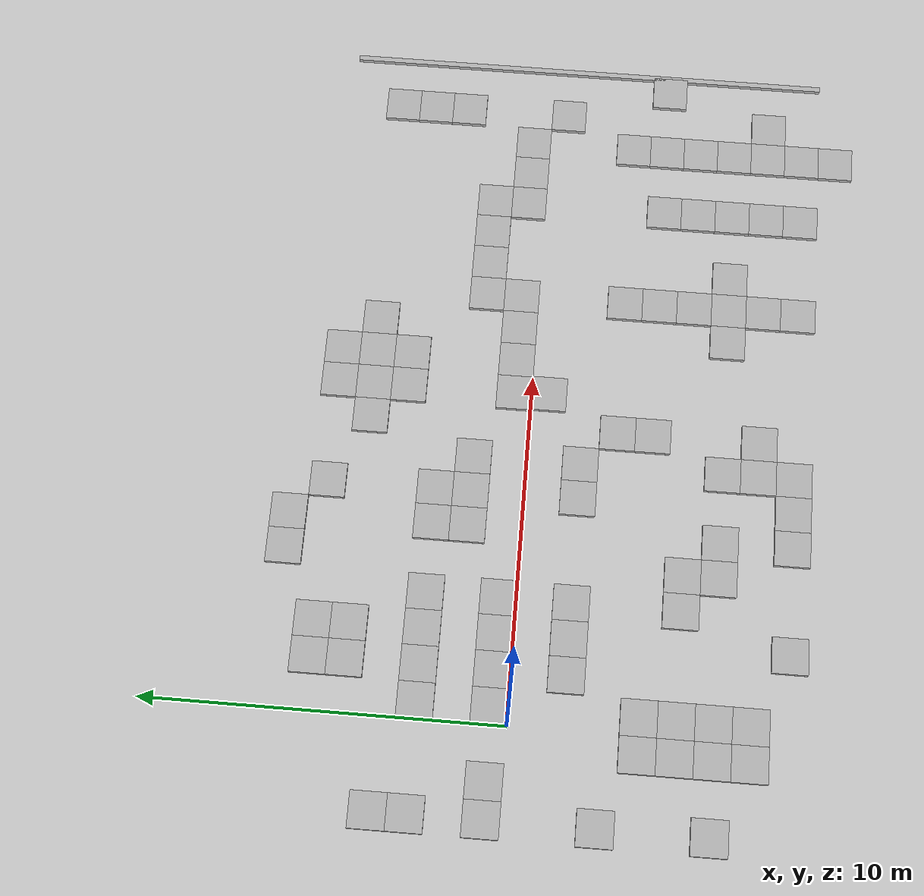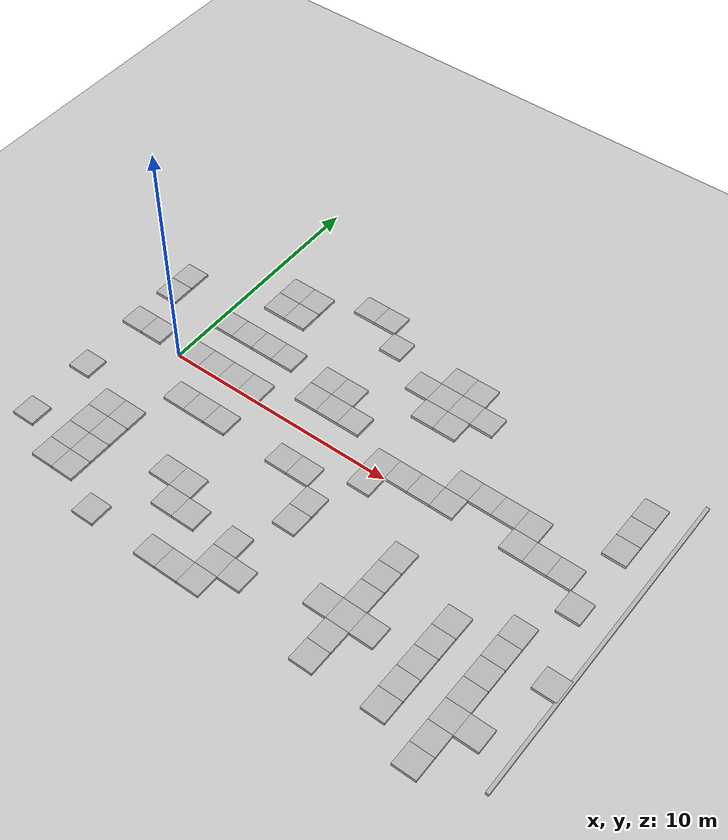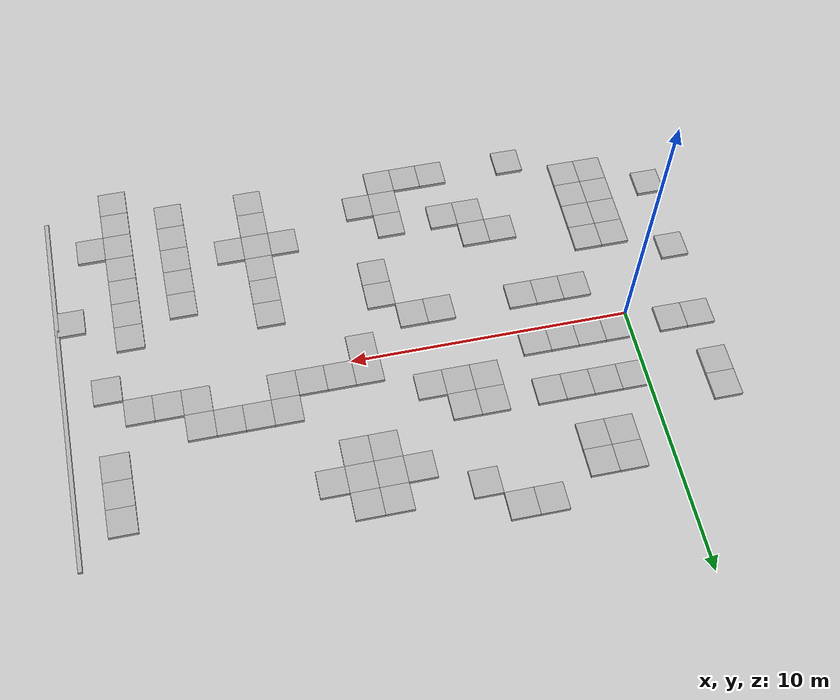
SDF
<sdf version="1.7">
 <world name="default">
  <model name="ground_plane">
   <static>1</static>
   <link name="link">
    <collision name="collision">
     <geometry><plane><normal>0 0 1</normal><size>100 100</size></plane></geometry>
     <surface>
      <contact><collide_bitmask>65535</collide_bitmask></contact>
      <friction><ode><mu>100</mu><mu2>50</mu2></ode></friction>
     </surface>
    </collision>
    <visual name="visual">
     <cast_shadows>0</cast_shadows>
     <geometry><plane><normal>0 0 1</normal><size>100 100</size></plane></geometry>
     <material>
      <script><uri>file://media/materials/scripts/gazebo.material</uri><name>Gazebo/Grey</name></script>
     </material>
    </visual>
   </link>
  </model>
  <model name="concrete_cube_1m_2">
   <static>1</static>
   <link name="link">
    <collision name="concrete_cube_1m">
     <pose>-0 0 0.3 0 -0 0</pose>
     <geometry><box><size>1 1 0.6</size></box></geometry>
    </collision>
    <visual name="concrete_cube_1m_visual">
     <geometry><mesh><uri>model://concrete_cube_1m/meshes/concrete_cube_1m.dae</uri></mesh></geometry>
    </visual>
   </link>
   <pose>-1.5 0.5 0 0 -0 0</pose>
  </model>
  <model name="concrete_cube_1m_4">
   <static>1</static>
   <link name="link">
    <collision name="concrete_cube_1m">
     <pose>-0 0 0.3 0 -0 0</pose>
     <geometry><box><size>1 1 0.6</size></box></geometry>
    </collision>
    <visual name="concrete_cube_1m_visual">
     <geometry><mesh><uri>model://concrete_cube_1m/meshes/concrete_cube_1m.dae</uri></mesh></geometry>
    </visual>
   </link>
   <pose>6.5 2.5 0 0 -0 0</pose>
  </model>
  <model name="concrete_cube_1m_5">
   <static>1</static>
   <link name="link">
    <collision name="concrete_cube_1m">
     <pose>-0 0 0.3 0 -0 0</pose>
     <geometry><box><size>1 1 0.6</size></box></geometry>
    </collision>
    <visual name="concrete_cube_1m_visual">
     <geometry><mesh><uri>model://concrete_cube_1m/meshes/concrete_cube_1m.dae</uri></mesh></geometry>
    </visual>
   </link>
   <pose>5.5 2.5 0 0 -0 0</pose>
  </model>
  <model name="concrete_cube_1m_6">
   <static>1</static>
   <link name="link">
    <collision name="concrete_cube_1m">
     <pose>-0 0 0.3 0 -0 0</pose>
     <geometry><box><size>1 1 0.6</size></box></geometry>
    </collision>
    <visual name="concrete_cube_1m_visual">
     <geometry><mesh><uri>model://concrete_cube_1m/meshes/concrete_cube_1m.dae</uri></mesh></geometry>
    </visual>
   </link>
   <pose>6.5 1.5 0 0 -0 0</pose>
  </model>
  <model name="concrete_cube_1m_7">
   <static>1</static>
   <link name="link">
    <collision name="concrete_cube_1m">
     <pose>-0 0 0.3 0 -0 0</pose>
     <geometry><box><size>1 1 0.6</size></box></geometry>
    </collision>
    <visual name="concrete_cube_1m_visual">
     <geometry><mesh><uri>model://concrete_cube_1m/meshes/concrete_cube_1m.dae</uri></mesh></geometry>
    </visual>
   </link>
   <pose>5.5 1.5 0 0 -0 0</pose>
  </model>
  <model name="concrete_cube_1m_8">
   <static>1</static>
   <link name="link">
    <collision name="concrete_cube_1m">
     <pose>-0 0 0.3 0 -0 0</pose>
     <geometry><box><size>1 1 0.6</size></box></geometry>
    </collision>
    <visual name="concrete_cube_1m_visual">
     <geometry><mesh><uri>model://concrete_cube_1m/meshes/concrete_cube_1m.dae</uri></mesh></geometry>
    </visual>
   </link>
   <pose>-0.5 -4.5 0 0 -0 0</pose>
  </model>
  <model name="concrete_cube_1m_9">
   <static>1</static>
   <link name="link">
    <collision name="concrete_cube_1m">
     <pose>-0 0 0.3 0 -0 0</pose>
     <geometry><box><size>1 1 0.6</size></box></geometry>
    </collision>
    <visual name="concrete_cube_1m_visual">
     <geometry><mesh><uri>model://concrete_cube_1m/meshes/concrete_cube_1m.dae</uri></mesh></geometry>
    </visual>
   </link>
   <pose>0.5 -4.5 0 0 -0 0</pose>
  </model>
  <model name="concrete_cube_1m_10">
   <static>1</static>
   <link name="link">
    <collision name="concrete_cube_1m">
     <pose>-0 0 0.3 0 -0 0</pose>
     <geometry><box><size>1 1 0.6</size></box></geometry>
    </collision>
    <visual name="concrete_cube_1m_visual">
     <geometry><mesh><uri>model://concrete_cube_1m/meshes/concrete_cube_1m.dae</uri></mesh></geometry>
    </visual>
   </link>
   <pose>4.5 -5.5 0 0 -0 0</pose>
  </model>
  <model name="concrete_cube_1m_11">
   <static>1</static>
   <link name="link">
    <collision name="concrete_cube_1m">
     <pose>-0 0 0.3 0 -0 0</pose>
     <geometry><box><size>1 1 0.6</size></box></geometry>
    </collision>
    <visual name="concrete_cube_1m_visual">
     <geometry><mesh><uri>model://concrete_cube_1m/meshes/concrete_cube_1m.dae</uri></mesh></geometry>
    </visual>
   </link>
   <pose>5.5 -5.5 0 0 -0 0</pose>
  </model>
  <model name="concrete_cube_1m_17">
   <static>1</static>
   <link name="link">
    <collision name="concrete_cube_1m">
     <pose>-0 0 0.3 0 -0 0</pose>
     <geometry><box><size>1 1 0.6</size></box></geometry>
    </collision>
    <visual name="concrete_cube_1m_visual">
     <geometry><mesh><uri>model://concrete_cube_1m/meshes/concrete_cube_1m.dae</uri></mesh></geometry>
    </visual>
   </link>
   <pose>2.5 5.5 0 0 -0 0</pose>
  </model>
  <model name="concrete_cube_1m_21">
   <static>1</static>
   <link name="link">
    <collision name="concrete_cube_1m">
     <pose>-0 0 0.3 0 -0 0</pose>
     <geometry><box><size>1 1 0.6</size></box></geometry>
    </collision>
    <visual name="concrete_cube_1m_visual">
     <geometry><mesh><uri>model://concrete_cube_1m/meshes/concrete_cube_1m.dae</uri></mesh></geometry>
    </visual>
   </link>
   <pose>6.5 5.5 0 0 -0 0</pose>
  </model>
  <model name="concrete_cube_1m_22">
   <static>1</static>
   <link name="link">
    <collision name="concrete_cube_1m">
     <pose>-0 0 0.3 0 -0 0</pose>
     <geometry><box><size>1 1 0.6</size></box></geometry>
    </collision>
    <visual name="concrete_cube_1m_visual">
     <geometry><mesh><uri>model://concrete_cube_1m/meshes/concrete_cube_1m.dae</uri></mesh></geometry>
    </visual>
   </link>
   <pose>5.5 6.5 0 0 -0 0</pose>
  </model>
  <model name="concrete_cube_1m_23">
   <static>1</static>
   <link name="link">
    <collision name="concrete_cube_1m">
     <pose>-0 0 0.3 0 -0 0</pose>
     <geometry><box><size>1 1 0.6</size></box></geometry>
    </collision>
    <visual name="concrete_cube_1m_visual">
     <geometry><mesh><uri>model://concrete_cube_1m/meshes/concrete_cube_1m.dae</uri></mesh></geometry>
    </visual>
   </link>
   <pose>4.5 6.5 0 0 -0 0</pose>
  </model>
  <model name="concrete_cube_1m_25">
   <static>1</static>
   <link name="link">
    <collision name="concrete_cube_1m">
     <pose>-0 0 0.3 0 -0 0</pose>
     <geometry><box><size>1 1 0.6</size></box></geometry>
    </collision>
    <visual name="concrete_cube_1m_visual">
     <geometry><mesh><uri>model://concrete_cube_1m/meshes/concrete_cube_1m.dae</uri></mesh></geometry>
    </visual>
   </link>
   <pose>3.5 2.5 0 0 -0 0</pose>
  </model>
  <model name="concrete_cube_1m_26">
   <static>1</static>
   <link name="link">
    <collision name="concrete_cube_1m">
     <pose>-0 0 0.3 0 -0 0</pose>
     <geometry><box><size>1 1 0.6</size></box></geometry>
    </collision>
    <visual name="concrete_cube_1m_visual">
     <geometry><mesh><uri>model://concrete_cube_1m/meshes/concrete_cube_1m.dae</uri></mesh></geometry>
    </visual>
   </link>
   <pose>2.5 2.5 0 0 -0 0</pose>
  </model>
  <model name="concrete_cube_1m_27">
   <static>1</static>
   <link name="link">
    <collision name="concrete_cube_1m">
     <pose>-0 0 0.3 0 -0 0</pose>
     <geometry><box><size>1 1 0.6</size></box></geometry>
    </collision>
    <visual name="concrete_cube_1m_visual">
     <geometry><mesh><uri>model://concrete_cube_1m/meshes/concrete_cube_1m.dae</uri></mesh></geometry>
    </visual>
   </link>
   <pose>1.5 2.5 0 0 -0 0</pose>
  </model>
  <model name="concrete_cube_1m_28">
   <static>1</static>
   <link name="link">
    <collision name="concrete_cube_1m">
     <pose>-0 0 0.3 0 -0 0</pose>
     <geometry><box><size>1 1 0.6</size></box></geometry>
    </collision>
    <visual name="concrete_cube_1m_visual">
     <geometry><mesh><uri>model://concrete_cube_1m/meshes/concrete_cube_1m.dae</uri></mesh></geometry>
    </visual>
   </link>
   <pose>0.5 2.5 0 0 -0 0</pose>
  </model>
  <model name="concrete_cube_1m_29">
   <static>1</static>
   <link name="link">
    <collision name="concrete_cube_1m">
     <pose>-0 0 0.3 0 -0 0</pose>
     <geometry><box><size>1 1 0.6</size></box></geometry>
    </collision>
    <visual name="concrete_cube_1m_visual">
     <geometry><mesh><uri>model://concrete_cube_1m/meshes/concrete_cube_1m.dae</uri></mesh></geometry>
    </visual>
   </link>
   <pose>1.5 4.5 0 0 -0 0</pose>
  </model>
  <model name="concrete_cube_1m_30">
   <static>1</static>
   <link name="link">
    <collision name="concrete_cube_1m">
     <pose>-0 0 0.3 0 -0 0</pose>
     <geometry><box><size>1 1 0.6</size></box></geometry>
    </collision>
    <visual name="concrete_cube_1m_visual">
     <geometry><mesh><uri>model://concrete_cube_1m/meshes/concrete_cube_1m.dae</uri></mesh></geometry>
    </visual>
   </link>
   <pose>8.5 4.5 0 0 -0 0</pose>
  </model>
  <model name="concrete_cube_1m_31">
   <static>1</static>
   <link name="link">
    <collision name="concrete_cube_1m">
     <pose>-0 0 0.3 0 -0 0</pose>
     <geometry><box><size>1 1 0.6</size></box></geometry>
    </collision>
    <visual name="concrete_cube_1m_visual">
     <geometry><mesh><uri>model://concrete_cube_1m/meshes/concrete_cube_1m.dae</uri></mesh></geometry>
    </visual>
   </link>
   <pose>9.5 4.5 0 0 -0 0</pose>
  </model>
  <model name="concrete_cube_1m_32">
   <static>1</static>
   <link name="link">
    <collision name="concrete_cube_1m">
     <pose>-0 0 0.3 0 -0 0</pose>
     <geometry><box><size>1 1 0.6</size></box></geometry>
    </collision>
    <visual name="concrete_cube_1m_visual">
     <geometry><mesh><uri>model://concrete_cube_1m/meshes/concrete_cube_1m.dae</uri></mesh></geometry>
    </visual>
   </link>
   <pose>9.5 3.5 0 0 -0 0</pose>
  </model>
  <model name="concrete_cube_1m_33">
   <static>1</static>
   <link name="link">
    <collision name="concrete_cube_1m">
     <pose>-0 0 0.3 0 -0 0</pose>
     <geometry><box><size>1 1 0.6</size></box></geometry>
    </collision>
    <visual name="concrete_cube_1m_visual">
     <geometry><mesh><uri>model://concrete_cube_1m/meshes/concrete_cube_1m.dae</uri></mesh></geometry>
    </visual>
   </link>
   <pose>9.5 5.5 0 0 -0 0</pose>
  </model>
  <model name="concrete_cube_1m_34">
   <static>1</static>
   <link name="link">
    <collision name="concrete_cube_1m">
     <pose>-0 0 0.3 0 -0 0</pose>
     <geometry><box><size>1 1 0.6</size></box></geometry>
    </collision>
    <visual name="concrete_cube_1m_visual">
     <geometry><mesh><uri>model://concrete_cube_1m/meshes/concrete_cube_1m.dae</uri></mesh></geometry>
    </visual>
   </link>
   <pose>7.5 1.5 0 0 -0 0</pose>
  </model>
  <model name="concrete_cube_1m_35">
   <static>1</static>
   <link name="link">
    <collision name="concrete_cube_1m">
     <pose>-0 0 0.3 0 -0 0</pose>
     <geometry><box><size>1 1 0.6</size></box></geometry>
    </collision>
    <visual name="concrete_cube_1m_visual">
     <geometry><mesh><uri>model://concrete_cube_1m/meshes/concrete_cube_1m.dae</uri></mesh></geometry>
    </visual>
   </link>
   <pose>9.5 0.5 0 0 -0 0</pose>
  </model>
  <model name="concrete_cube_1m_39">
   <static>1</static>
   <link name="link">
    <collision name="concrete_cube_1m">
     <pose>-0 0 0.3 0 -0 0</pose>
     <geometry><box><size>1 1 0.6</size></box></geometry>
    </collision>
    <visual name="concrete_cube_1m_visual">
     <geometry><mesh><uri>model://concrete_cube_1m/meshes/concrete_cube_1m.dae</uri></mesh></geometry>
    </visual>
   </link>
   <pose>2.5 4.5 0 0 -0 0</pose>
  </model>
  <model name="concrete_cube_1m_40">
   <static>1</static>
   <link name="link">
    <collision name="concrete_cube_1m">
     <pose>-0 0 0.3 0 -0 0</pose>
     <geometry><box><size>1 1 0.6</size></box></geometry>
    </collision>
    <visual name="concrete_cube_1m_visual">
     <geometry><mesh><uri>model://concrete_cube_1m/meshes/concrete_cube_1m.dae</uri></mesh></geometry>
    </visual>
   </link>
   <pose>1.5 5.5 0 0 -0 0</pose>
  </model>
  <model name="concrete_cube_1m_41">
   <static>1</static>
   <link name="link">
    <collision name="concrete_cube_1m">
     <pose>-0 0 0.3 0 -0 0</pose>
     <geometry><box><size>1 1 0.6</size></box></geometry>
    </collision>
    <visual name="concrete_cube_1m_visual">
     <geometry><mesh><uri>model://concrete_cube_1m/meshes/concrete_cube_1m.dae</uri></mesh></geometry>
    </visual>
   </link>
   <pose>3.5 0.5 0 0 -0 0</pose>
  </model>
  <model name="concrete_cube_1m_42">
   <static>1</static>
   <link name="link">
    <collision name="concrete_cube_1m">
     <pose>-0 0 0.3 0 -0 0</pose>
     <geometry><box><size>1 1 0.6</size></box></geometry>
    </collision>
    <visual name="concrete_cube_1m_visual">
     <geometry><mesh><uri>model://concrete_cube_1m/meshes/concrete_cube_1m.dae</uri></mesh></geometry>
    </visual>
   </link>
   <pose>2.5 0.5 0 0 -0 0</pose>
  </model>
  <model name="concrete_cube_1m_45">
   <static>1</static>
   <link name="link">
    <collision name="concrete_cube_1m">
     <pose>-0 0 0.3 0 -0 0</pose>
     <geometry><box><size>1 1 0.6</size></box></geometry>
    </collision>
    <visual name="concrete_cube_1m_visual">
     <geometry><mesh><uri>model://concrete_cube_1m/meshes/concrete_cube_1m.dae</uri></mesh></geometry>
    </visual>
   </link>
   <pose>-2.5 0.5 0 0 -0 0</pose>
  </model>
  <model name="concrete_cube_1m_63">
   <static>1</static>
   <link name="link">
    <collision name="concrete_cube_1m">
     <pose>-0 0 0.3 0 -0 0</pose>
     <geometry><box><size>1 1 0.6</size></box></geometry>
    </collision>
    <visual name="concrete_cube_1m_visual">
     <geometry><mesh><uri>model://concrete_cube_1m/meshes/concrete_cube_1m.dae</uri></mesh></geometry>
    </visual>
   </link>
   <pose>-2.5 3.5 0 0 -0 0</pose>
  </model>
  <model name="concrete_cube_1m_64">
   <static>1</static>
   <link name="link">
    <collision name="concrete_cube_1m">
     <pose>-0 0 0.3 0 -0 0</pose>
     <geometry><box><size>1 1 0.6</size></box></geometry>
    </collision>
    <visual name="concrete_cube_1m_visual">
     <geometry><mesh><uri>model://concrete_cube_1m/meshes/concrete_cube_1m.dae</uri></mesh></geometry>
    </visual>
   </link>
   <pose>7.5 -7.5 0 0 -0 0</pose>
  </model>
  <model name="concrete_cube_1m_65">
   <static>1</static>
   <link name="link">
    <collision name="concrete_cube_1m">
     <pose>-0 0 0.3 0 -0 0</pose>
     <geometry><box><size>1 1 0.6</size></box></geometry>
    </collision>
    <visual name="concrete_cube_1m_visual">
     <geometry><mesh><uri>model://concrete_cube_1m/meshes/concrete_cube_1m.dae</uri></mesh></geometry>
    </visual>
   </link>
   <pose>7.5 -6.5 0 0 -0 0</pose>
  </model>
  <model name="concrete_cube_1m_66">
   <static>1</static>
   <link name="link">
    <collision name="concrete_cube_1m">
     <pose>-0 0 0.3 0 -0 0</pose>
     <geometry><box><size>1 1 0.6</size></box></geometry>
    </collision>
    <visual name="concrete_cube_1m_visual">
     <geometry><mesh><uri>model://concrete_cube_1m/meshes/concrete_cube_1m.dae</uri></mesh></geometry>
    </visual>
   </link>
   <pose>7.5 -5.5 0 0 -0 0</pose>
  </model>
  <model name="concrete_cube_1m_67">
   <static>1</static>
   <link name="link">
    <collision name="concrete_cube_1m">
     <pose>-0 0 0.3 0 -0 0</pose>
     <geometry><box><size>1 1 0.6</size></box></geometry>
    </collision>
    <visual name="concrete_cube_1m_visual">
     <geometry><mesh><uri>model://concrete_cube_1m/meshes/concrete_cube_1m.dae</uri></mesh></geometry>
    </visual>
   </link>
   <pose>6.5 -7.5 0 0 -0 0</pose>
  </model>
  <model name="concrete_cube_1m_68">
   <static>1</static>
   <link name="link">
    <collision name="concrete_cube_1m">
     <pose>-0 0 0.3 0 -0 0</pose>
     <geometry><box><size>1 1 0.6</size></box></geometry>
    </collision>
    <visual name="concrete_cube_1m_visual">
     <geometry><mesh><uri>model://concrete_cube_1m/meshes/concrete_cube_1m.dae</uri></mesh></geometry>
    </visual>
   </link>
   <pose>5.5 -7.5 0 0 -0 0</pose>
  </model>
  <model name="concrete_cube_1m_69">
   <static>1</static>
   <link name="link">
    <collision name="concrete_cube_1m">
     <pose>-0 0 0.3 0 -0 0</pose>
     <geometry><box><size>1 1 0.6</size></box></geometry>
    </collision>
    <visual name="concrete_cube_1m_visual">
     <geometry><mesh><uri>model://concrete_cube_1m/meshes/concrete_cube_1m.dae</uri></mesh></geometry>
    </visual>
   </link>
   <pose>8.5 -2.5 0 0 -0 0</pose>
  </model>
  <model name="concrete_cube_1m_70">
   <static>1</static>
   <link name="link">
    <collision name="concrete_cube_1m">
     <pose>-0 0 0.3 0 -0 0</pose>
     <geometry><box><size>1 1 0.6</size></box></geometry>
    </collision>
    <visual name="concrete_cube_1m_visual">
     <geometry><mesh><uri>model://concrete_cube_1m/meshes/concrete_cube_1m.dae</uri></mesh></geometry>
    </visual>
   </link>
   <pose>9.52896 -0.491132 0 0 -0 0</pose>
  </model>
  <model name="concrete_cube_1m_71">
   <static>1</static>
   <link name="link">
    <collision name="concrete_cube_1m">
     <pose>-0 0 0.3 0 -0 0</pose>
     <geometry><box><size>1 1 0.6</size></box></geometry>
    </collision>
    <visual name="concrete_cube_1m_visual">
     <geometry><mesh><uri>model://concrete_cube_1m/meshes/concrete_cube_1m.dae</uri></mesh></geometry>
    </visual>
   </link>
   <pose>7.5 -1.5 0 0 -0 0</pose>
  </model>
  <model name="concrete_cube_1m_72">
   <static>1</static>
   <link name="link">
    <collision name="concrete_cube_1m">
     <pose>-0 0 0.3 0 -0 0</pose>
     <geometry><box><size>1 1 0.6</size></box></geometry>
    </collision>
    <visual name="concrete_cube_1m_visual">
     <geometry><mesh><uri>model://concrete_cube_1m/meshes/concrete_cube_1m.dae</uri></mesh></geometry>
    </visual>
   </link>
   <pose>8.5 -3.5 0 0 -0 0</pose>
  </model>
  <model name="concrete_cube_1m_73">
   <static>1</static>
   <link name="link">
    <collision name="concrete_cube_1m">
     <pose>-0 0 0.3 0 -0 0</pose>
     <geometry><box><size>1 1 0.6</size></box></geometry>
    </collision>
    <visual name="concrete_cube_1m_visual">
     <geometry><mesh><uri>model://concrete_cube_1m/meshes/concrete_cube_1m.dae</uri></mesh></geometry>
    </visual>
   </link>
   <pose>6.5 -1.5 0 0 -0 0</pose>
  </model>
  <model name="concrete_cube_1m_74">
   <static>1</static>
   <link name="link">
    <collision name="concrete_cube_1m">
     <pose>-0 0 0.3 0 -0 0</pose>
     <geometry><box><size>1 1 0.6</size></box></geometry>
    </collision>
    <visual name="concrete_cube_1m_visual">
     <geometry><mesh><uri>model://concrete_cube_1m/meshes/concrete_cube_1m.dae</uri></mesh></geometry>
    </visual>
   </link>
   <pose>4.5 -4.5 0 0 -0 0</pose>
  </model>
  <model name="concrete_cube_1m_75">
   <static>1</static>
   <link name="link">
    <collision name="concrete_cube_1m">
     <pose>-0 0 0.3 0 -0 0</pose>
     <geometry><box><size>1 1 0.6</size></box></geometry>
    </collision>
    <visual name="concrete_cube_1m_visual">
     <geometry><mesh><uri>model://concrete_cube_1m/meshes/concrete_cube_1m.dae</uri></mesh></geometry>
    </visual>
   </link>
   <pose>3.5 -4.5 0 0 -0 0</pose>
  </model>
  <model name="concrete_cube_1m_76">
   <static>1</static>
   <link name="link">
    <collision name="concrete_cube_1m">
     <pose>-0 0 0.3 0 -0 0</pose>
     <geometry><box><size>1 1 0.6</size></box></geometry>
    </collision>
    <visual name="concrete_cube_1m_visual">
     <geometry><mesh><uri>model://concrete_cube_1m/meshes/concrete_cube_1m.dae</uri></mesh></geometry>
    </visual>
   </link>
   <pose>0.5 -3.5 0 0 -0 0</pose>
  </model>
  <model name="concrete_cube_1m_77">
   <static>1</static>
   <link name="link">
    <collision name="concrete_cube_1m">
     <pose>-0 0 0.3 0 -0 0</pose>
     <geometry><box><size>1 1 0.6</size></box></geometry>
    </collision>
    <visual name="concrete_cube_1m_visual">
     <geometry><mesh><uri>model://concrete_cube_1m/meshes/concrete_cube_1m.dae</uri></mesh></geometry>
    </visual>
   </link>
   <pose>-0.5 -3.5 0 0 -0 0</pose>
  </model>
  <model name="concrete_cube_1m_78">
   <static>1</static>
   <link name="link">
    <collision name="concrete_cube_1m">
     <pose>-0 0 0.3 0 -0 0</pose>
     <geometry><box><size>1 1 0.6</size></box></geometry>
    </collision>
    <visual name="concrete_cube_1m_visual">
     <geometry><mesh><uri>model://concrete_cube_1m/meshes/concrete_cube_1m.dae</uri></mesh></geometry>
    </visual>
   </link>
   <pose>0.5 -6.5 0 0 -0 0</pose>
  </model>
  <model name="concrete_cube_1m_79">
   <static>1</static>
   <link name="link">
    <collision name="concrete_cube_1m">
     <pose>-0 0 0.3 0 -0 0</pose>
     <geometry><box><size>1 1 0.6</size></box></geometry>
    </collision>
    <visual name="concrete_cube_1m_visual">
     <geometry><mesh><uri>model://concrete_cube_1m/meshes/concrete_cube_1m.dae</uri></mesh></geometry>
    </visual>
   </link>
   <pose>0.5 -5.5 0 0 -0 0</pose>
  </model>
  <model name="concrete_cube_1m_80">
   <static>1</static>
   <link name="link">
    <collision name="concrete_cube_1m">
     <pose>-0 0 0.3 0 -0 0</pose>
     <geometry><box><size>1 1 0.6</size></box></geometry>
    </collision>
    <visual name="concrete_cube_1m_visual">
     <geometry><mesh><uri>model://concrete_cube_1m/meshes/concrete_cube_1m.dae</uri></mesh></geometry>
    </visual>
   </link>
   <pose>-0.5 -6.5 0 0 -0 0</pose>
  </model>
  <model name="concrete_cube_1m_81">
   <static>1</static>
   <link name="link">
    <collision name="concrete_cube_1m">
     <pose>-0 0 0.3 0 -0 0</pose>
     <geometry><box><size>1 1 0.6</size></box></geometry>
    </collision>
    <visual name="concrete_cube_1m_visual">
     <geometry><mesh><uri>model://concrete_cube_1m/meshes/concrete_cube_1m.dae</uri></mesh></geometry>
    </visual>
   </link>
   <pose>-0.5 -5.5 0 0 -0 0</pose>
  </model>
  <model name="concrete_cube_1m_84">
   <static>1</static>
   <link name="link">
    <collision name="concrete_cube_1m">
     <pose>-0 0 0.3 0 -0 0</pose>
     <geometry><box><size>1 1 0.6</size></box></geometry>
    </collision>
    <visual name="concrete_cube_1m_visual">
     <geometry><mesh><uri>model://concrete_cube_1m/meshes/concrete_cube_1m.dae</uri></mesh></geometry>
    </visual>
   </link>
   <pose>3.5 -1.5 0 0 -0 0</pose>
  </model>
  <model name="concrete_cube_1m_85">
   <static>1</static>
   <link name="link">
    <collision name="concrete_cube_1m">
     <pose>-0 0 0.3 0 -0 0</pose>
     <geometry><box><size>1 1 0.6</size></box></geometry>
    </collision>
    <visual name="concrete_cube_1m_visual">
     <geometry><mesh><uri>model://concrete_cube_1m/meshes/concrete_cube_1m.dae</uri></mesh></geometry>
    </visual>
   </link>
   <pose>2.5 -1.5 0 0 -0 0</pose>
  </model>
  <model name="concrete_cube_1m_86">
   <static>1</static>
   <link name="link">
    <collision name="concrete_cube_1m">
     <pose>-0 0 0.3 0 -0 0</pose>
     <geometry><box><size>1 1 0.6</size></box></geometry>
    </collision>
    <visual name="concrete_cube_1m_visual">
     <geometry><mesh><uri>model://concrete_cube_1m/meshes/concrete_cube_1m.dae</uri></mesh></geometry>
    </visual>
   </link>
   <pose>1.5 -1.5 0 0 -0 0</pose>
  </model>
  <model name="concrete_cube_1m_87">
   <static>1</static>
   <link name="link">
    <collision name="concrete_cube_1m">
     <pose>-0 0 0.3 0 -0 0</pose>
     <geometry><box><size>1 1 0.6</size></box></geometry>
    </collision>
    <visual name="concrete_cube_1m_visual">
     <geometry><mesh><uri>model://concrete_cube_1m/meshes/concrete_cube_1m.dae</uri></mesh></geometry>
    </visual>
   </link>
   <pose>2.5 -7.5 0 0 -0 0</pose>
  </model>
  <model name="concrete_cube_1m_99">
   <static>1</static>
   <link name="link">
    <collision name="concrete_cube_1m">
     <pose>-0 0 0.3 0 -0 0</pose>
     <geometry><box><size>1 1 0.6</size></box></geometry>
    </collision>
    <visual name="concrete_cube_1m_visual">
     <geometry><mesh><uri>model://concrete_cube_1m/meshes/concrete_cube_1m.dae</uri></mesh></geometry>
    </visual>
   </link>
   <pose>-2.5 -2.5 0 0 -0 0</pose>
  </model>
  <model name="concrete_cube_1m_103">
   <static>1</static>
   <link name="link">
    <collision name="concrete_cube_1m">
     <pose>-0 0 0.3 0 -0 0</pose>
     <geometry><box><size>1 1 0.6</size></box></geometry>
    </collision>
    <visual name="concrete_cube_1m_visual">
     <geometry><mesh><uri>model://concrete_cube_1m/meshes/concrete_cube_1m.dae</uri></mesh></geometry>
    </visual>
   </link>
   <pose>-2.5 -5.5 0 0 -0 0</pose>
  </model>
  <model name="concrete_cube_1m_105">
   <static>1</static>
   <link name="link">
    <collision name="concrete_cube_1m">
     <pose>-0 0 0.3 0 -0 0</pose>
     <geometry><box><size>1 1 0.6</size></box></geometry>
    </collision>
    <visual name="concrete_cube_1m_visual">
     <geometry><mesh><uri>model://concrete_cube_1m/meshes/concrete_cube_1m.dae</uri></mesh></geometry>
    </visual>
   </link>
   <pose>8.5 -6.5 0 0 -0 0</pose>
  </model>
  <model name="concrete_cube_1m_115">
   <static>1</static>
   <link name="link">
    <collision name="concrete_cube_1m">
     <pose>-0 0 0.3 0 -0 0</pose>
     <geometry><box><size>1 1 0.6</size></box></geometry>
    </collision>
    <visual name="concrete_cube_1m_visual">
     <geometry><mesh><uri>model://concrete_cube_1m/meshes/concrete_cube_1m.dae</uri></mesh></geometry>
    </visual>
   </link>
   <pose>10.5 0.5 0 0 -0 0</pose>
  </model>
  <model name="concrete_cube_1m_116">
   <static>1</static>
   <link name="link">
    <collision name="concrete_cube_1m">
     <pose>-0 0 0.3 0 -0 0</pose>
     <geometry><box><size>1 1 0.6</size></box></geometry>
    </collision>
    <visual name="concrete_cube_1m_visual">
     <geometry><mesh><uri>model://concrete_cube_1m/meshes/concrete_cube_1m.dae</uri></mesh></geometry>
    </visual>
   </link>
   <pose>11.5 0.5 0 0 -0 0</pose>
  </model>
  <model name="concrete_cube_1m_117">
   <static>1</static>
   <link name="link">
    <collision name="concrete_cube_1m">
     <pose>-0 0 0.3 0 -0 0</pose>
     <geometry><box><size>1 1 0.6</size></box></geometry>
    </collision>
    <visual name="concrete_cube_1m_visual">
     <geometry><mesh><uri>model://concrete_cube_1m/meshes/concrete_cube_1m.dae</uri></mesh></geometry>
    </visual>
   </link>
   <pose>12.5 0.5 0 0 -0 0</pose>
  </model>
  <model name="concrete_cube_1m_118">
   <static>1</static>
   <link name="link">
    <collision name="concrete_cube_1m">
     <pose>-0 0 0.3 0 -0 0</pose>
     <geometry><box><size>1 1 0.6</size></box></geometry>
    </collision>
    <visual name="concrete_cube_1m_visual">
     <geometry><mesh><uri>model://concrete_cube_1m/meshes/concrete_cube_1m.dae</uri></mesh></geometry>
    </visual>
   </link>
   <pose>12.5 1.5 0 0 -0 0</pose>
  </model>
  <model name="concrete_cube_1m_119">
   <static>1</static>
   <link name="link">
    <collision name="concrete_cube_1m">
     <pose>-0 0 0.3 0 -0 0</pose>
     <geometry><box><size>1 1 0.6</size></box></geometry>
    </collision>
    <visual name="concrete_cube_1m_visual">
     <geometry><mesh><uri>model://concrete_cube_1m/meshes/concrete_cube_1m.dae</uri></mesh></geometry>
    </visual>
   </link>
   <pose>10.5 3.5 0 0 -0 0</pose>
  </model>
  <model name="concrete_cube_1m_120">
   <static>1</static>
   <link name="link">
    <collision name="concrete_cube_1m">
     <pose>-0 0 0.3 0 -0 0</pose>
     <geometry><box><size>1 1 0.6</size></box></geometry>
    </collision>
    <visual name="concrete_cube_1m_visual">
     <geometry><mesh><uri>model://concrete_cube_1m/meshes/concrete_cube_1m.dae</uri></mesh></geometry>
    </visual>
   </link>
   <pose>10.5 4.5 0 0 -0 0</pose>
  </model>
  <model name="concrete_cube_1m_121">
   <static>1</static>
   <link name="link">
    <collision name="concrete_cube_1m">
     <pose>-0 0 0.3 0 -0 0</pose>
     <geometry><box><size>1 1 0.6</size></box></geometry>
    </collision>
    <visual name="concrete_cube_1m_visual">
     <geometry><mesh><uri>model://concrete_cube_1m/meshes/concrete_cube_1m.dae</uri></mesh></geometry>
    </visual>
   </link>
   <pose>10.5 5.5 0 0 -0 0</pose>
  </model>
  <model name="concrete_cube_1m_122">
   <static>1</static>
   <link name="link">
    <collision name="concrete_cube_1m">
     <pose>-0 0 0.3 0 -0 0</pose>
     <geometry><box><size>1 1 0.6</size></box></geometry>
    </collision>
    <visual name="concrete_cube_1m_visual">
     <geometry><mesh><uri>model://concrete_cube_1m/meshes/concrete_cube_1m.dae</uri></mesh></geometry>
    </visual>
   </link>
   <pose>11.5 4.5 0 0 -0 0</pose>
  </model>
  <model name="concrete_cube_1m_145">
   <static>1</static>
   <link name="link">
    <collision name="concrete_cube_1m">
     <pose>-0 0 0.3 0 -0 0</pose>
     <geometry><box><size>1 1 0.6</size></box></geometry>
    </collision>
    <visual name="concrete_cube_1m_visual">
     <geometry><mesh><uri>model://concrete_cube_1m/meshes/concrete_cube_1m.dae</uri></mesh></geometry>
    </visual>
   </link>
   <pose>1.5 0.5 0 0 -0 0</pose>
  </model>
  <model name="concrete_cube_1m_146">
   <static>1</static>
   <link name="link">
    <collision name="concrete_cube_1m">
     <pose>-0 0 0.3 0 -0 0</pose>
     <geometry><box><size>1 1 0.6</size></box></geometry>
    </collision>
    <visual name="concrete_cube_1m_visual">
     <geometry><mesh><uri>model://concrete_cube_1m/meshes/concrete_cube_1m.dae</uri></mesh></geometry>
    </visual>
   </link>
   <pose>0.5 0.5 0 0 -0 0</pose>
  </model>
  <model name="concrete_cube_1m_180">
   <static>1</static>
   <link name="link">
    <collision name="concrete_cube_1m">
     <pose>-0 0 0.3 0 -0 0</pose>
     <geometry><box><size>1 1 0.6</size></box></geometry>
    </collision>
    <visual name="concrete_cube_1m_visual">
     <geometry><mesh><uri>model://concrete_cube_1m/meshes/concrete_cube_1m.dae</uri></mesh></geometry>
    </visual>
   </link>
   <pose>-2.5 2.5 0 0 -0 0</pose>
  </model>
  <model name="concrete_cube_1m_231">
   <static>1</static>
   <link name="link">
    <collision name="concrete_cube_1m">
     <pose>-0 0 0.3 0 -0 0</pose>
     <geometry><box><size>1 1 0.6</size></box></geometry>
    </collision>
    <visual name="concrete_cube_1m_visual">
     <geometry><mesh><uri>model://concrete_cube_1m/meshes/concrete_cube_1m.dae</uri></mesh></geometry>
    </visual>
   </link>
   <pose>12.5 -7.5 0 0 -0 0</pose>
  </model>
  <model name="concrete_cube_1m_232">
   <static>1</static>
   <link name="link">
    <collision name="concrete_cube_1m">
     <pose>-0 0 0.3 0 -0 0</pose>
     <geometry><box><size>1 1 0.6</size></box></geometry>
    </collision>
    <visual name="concrete_cube_1m_visual">
     <geometry><mesh><uri>model://concrete_cube_1m/meshes/concrete_cube_1m.dae</uri></mesh></geometry>
    </visual>
   </link>
   <pose>12.5 -6.5 0 0 -0 0</pose>
  </model>
  <model name="concrete_cube_1m_233">
   <static>1</static>
   <link name="link">
    <collision name="concrete_cube_1m">
     <pose>-0 0 0.3 0 -0 0</pose>
     <geometry><box><size>1 1 0.6</size></box></geometry>
    </collision>
    <visual name="concrete_cube_1m_visual">
     <geometry><mesh><uri>model://concrete_cube_1m/meshes/concrete_cube_1m.dae</uri></mesh></geometry>
    </visual>
   </link>
   <pose>12.5 -5.5 0 0 -0 0</pose>
  </model>
  <model name="concrete_cube_1m_234">
   <static>1</static>
   <link name="link">
    <collision name="concrete_cube_1m">
     <pose>-0 0 0.3 0 -0 0</pose>
     <geometry><box><size>1 1 0.6</size></box></geometry>
    </collision>
    <visual name="concrete_cube_1m_visual">
     <geometry><mesh><uri>model://concrete_cube_1m/meshes/concrete_cube_1m.dae</uri></mesh></geometry>
    </visual>
   </link>
   <pose>12.5 -4.5 0 0 -0 0</pose>
  </model>
  <model name="concrete_cube_1m_235">
   <static>1</static>
   <link name="link">
    <collision name="concrete_cube_1m">
     <pose>-0 0 0.3 0 -0 0</pose>
     <geometry><box><size>1 1 0.6</size></box></geometry>
    </collision>
    <visual name="concrete_cube_1m_visual">
     <geometry><mesh><uri>model://concrete_cube_1m/meshes/concrete_cube_1m.dae</uri></mesh></geometry>
    </visual>
   </link>
   <pose>12.5 -3.5 0 0 -0 0</pose>
  </model>
  <model name="concrete_cube_1m_236">
   <static>1</static>
   <link name="link">
    <collision name="concrete_cube_1m">
     <pose>-0 0 0.3 0 -0 0</pose>
     <geometry><box><size>1 1 0.6</size></box></geometry>
    </collision>
    <visual name="concrete_cube_1m_visual">
     <geometry><mesh><uri>model://concrete_cube_1m/meshes/concrete_cube_1m.dae</uri></mesh></geometry>
    </visual>
   </link>
   <pose>12.5 -2.5 0 0 -0 0</pose>
  </model>
  <model name="concrete_cube_1m_238">
   <static>1</static>
   <link name="link">
    <collision name="concrete_cube_1m">
     <pose>-0 0 0.3 0 -0 0</pose>
     <geometry><box><size>1 1 0.6</size></box></geometry>
    </collision>
    <visual name="concrete_cube_1m_visual">
     <geometry><mesh><uri>model://concrete_cube_1m/meshes/concrete_cube_1m.dae</uri></mesh></geometry>
    </visual>
   </link>
   <pose>11.5 -5.5 0 0 -0 0</pose>
  </model>
  <model name="concrete_cube_1m_240">
   <static>1</static>
   <link name="link">
    <collision name="concrete_cube_1m">
     <pose>-0 0 0.3 0 -0 0</pose>
     <geometry><box><size>1 1 0.6</size></box></geometry>
    </collision>
    <visual name="concrete_cube_1m_visual">
     <geometry><mesh><uri>model://concrete_cube_1m/meshes/concrete_cube_1m.dae</uri></mesh></geometry>
    </visual>
   </link>
   <pose>13.5 -5.5 0 0 -0 0</pose>
  </model>
  <model name="concrete_barrier_14m_7">
   <static>1</static>
   <link name="link">
    <collision name="concrete_barrier_14m_01">
     <pose>-0 0 0.3 0 -0 0</pose>
     <geometry><box><size>14 0.15 0.6</size></box></geometry>
    </collision>
    <visual name="concrete_barrier_14m_visual">
     <geometry><mesh><uri>model://concrete_barrier_14m/meshes/concrete_barrier_14m.dae</uri></mesh></geometry>
    </visual>
   </link>
   <pose>20 -1 0 0 -0 0</pose>
  </model>
  <model name="concrete_cube_1m_262">
   <static>1</static>
   <link name="link">
    <collision name="concrete_cube_1m">
     <pose>-0 0 0.3 0 -0 0</pose>
     <geometry><box><size>1 1 0.6</size></box></geometry>
    </collision>
    <visual name="concrete_cube_1m_visual">
     <geometry><mesh><uri>model://concrete_cube_1m/meshes/concrete_cube_1m.dae</uri></mesh></geometry>
    </visual>
   </link>
   <pose>13.5 1.5 0 0 -0 0</pose>
  </model>
  <model name="concrete_cube_1m_263">
   <static>1</static>
   <link name="link">
    <collision name="concrete_cube_1m">
     <pose>-0 0 0.3 0 -0 0</pose>
     <geometry><box><size>1 1 0.6</size></box></geometry>
    </collision>
    <visual name="concrete_cube_1m_visual">
     <geometry><mesh><uri>model://concrete_cube_1m/meshes/concrete_cube_1m.dae</uri></mesh></geometry>
    </visual>
   </link>
   <pose>14.5 1.5 0 0 -0 0</pose>
  </model>
  <model name="concrete_cube_1m_264">
   <static>1</static>
   <link name="link">
    <collision name="concrete_cube_1m">
     <pose>-0 0 0.3 0 -0 0</pose>
     <geometry><box><size>1 1 0.6</size></box></geometry>
    </collision>
    <visual name="concrete_cube_1m_visual">
     <geometry><mesh><uri>model://concrete_cube_1m/meshes/concrete_cube_1m.dae</uri></mesh></geometry>
    </visual>
   </link>
   <pose>15.5 1.5 0 0 -0 0</pose>
  </model>
  <model name="concrete_cube_1m_265">
   <static>1</static>
   <link name="link">
    <collision name="concrete_cube_1m">
     <pose>-0 0 0.3 0 -0 0</pose>
     <geometry><box><size>1 1 0.6</size></box></geometry>
    </collision>
    <visual name="concrete_cube_1m_visual">
     <geometry><mesh><uri>model://concrete_cube_1m/meshes/concrete_cube_1m.dae</uri></mesh></geometry>
    </visual>
   </link>
   <pose>15.5 0.5 0 0 -0 0</pose>
  </model>
  <model name="concrete_cube_1m_266">
   <static>1</static>
   <link name="link">
    <collision name="concrete_cube_1m">
     <pose>-0 0 0.3 0 -0 0</pose>
     <geometry><box><size>1 1 0.6</size></box></geometry>
    </collision>
    <visual name="concrete_cube_1m_visual">
     <geometry><mesh><uri>model://concrete_cube_1m/meshes/concrete_cube_1m.dae</uri></mesh></geometry>
    </visual>
   </link>
   <pose>16.5 0.5 0 0 -0 0</pose>
  </model>
  <model name="concrete_cube_1m_267">
   <static>1</static>
   <link name="link">
    <collision name="concrete_cube_1m">
     <pose>-0 0 0.3 0 -0 0</pose>
     <geometry><box><size>1 1 0.6</size></box></geometry>
    </collision>
    <visual name="concrete_cube_1m_visual">
     <geometry><mesh><uri>model://concrete_cube_1m/meshes/concrete_cube_1m.dae</uri></mesh></geometry>
    </visual>
   </link>
   <pose>17.5 0.5 0 0 -0 0</pose>
  </model>
  <model name="concrete_cube_1m_301">
   <static>1</static>
   <link name="link">
    <collision name="concrete_cube_1m">
     <pose>-0 0 0.3 0 -0 0</pose>
     <geometry><box><size>1 1 0.6</size></box></geometry>
    </collision>
    <visual name="concrete_cube_1m_visual">
     <geometry><mesh><uri>model://concrete_cube_1m/meshes/concrete_cube_1m.dae</uri></mesh></geometry>
    </visual>
   </link>
   <pose>18.5 2.5 0 0 -0 0</pose>
  </model>
  <model name="concrete_cube_1m_302">
   <static>1</static>
   <link name="link">
    <collision name="concrete_cube_1m">
     <pose>-0 0 0.3 0 -0 0</pose>
     <geometry><box><size>1 1 0.6</size></box></geometry>
    </collision>
    <visual name="concrete_cube_1m_visual">
     <geometry><mesh><uri>model://concrete_cube_1m/meshes/concrete_cube_1m.dae</uri></mesh></geometry>
    </visual>
   </link>
   <pose>18.5 3.5 0 0 -0 0</pose>
  </model>
  <model name="concrete_cube_1m_303">
   <static>1</static>
   <link name="link">
    <collision name="concrete_cube_1m">
     <pose>-0 0 0.3 0 -0 0</pose>
     <geometry><box><size>1 1 0.6</size></box></geometry>
    </collision>
    <visual name="concrete_cube_1m_visual">
     <geometry><mesh><uri>model://concrete_cube_1m/meshes/concrete_cube_1m.dae</uri></mesh></geometry>
    </visual>
   </link>
   <pose>18.5 4.5 0 0 -0 0</pose>
  </model>
  <model name="concrete_cube_1m_437">
   <static>1</static>
   <link name="link">
    <collision name="concrete_cube_1m">
     <pose>-0 0 0.3 0 -0 0</pose>
     <geometry><box><size>1 1 0.6</size></box></geometry>
    </collision>
    <visual name="concrete_cube_1m_visual">
     <geometry><mesh><uri>model://concrete_cube_1m/meshes/concrete_cube_1m.dae</uri></mesh></geometry>
    </visual>
   </link>
   <pose>17.5 -8.5 0 0 -0 0</pose>
  </model>
  <model name="concrete_cube_1m_438">
   <static>1</static>
   <link name="link">
    <collision name="concrete_cube_1m">
     <pose>-0 0 0.3 0 -0 0</pose>
     <geometry><box><size>1 1 0.6</size></box></geometry>
    </collision>
    <visual name="concrete_cube_1m_visual">
     <geometry><mesh><uri>model://concrete_cube_1m/meshes/concrete_cube_1m.dae</uri></mesh></geometry>
    </visual>
   </link>
   <pose>17.5 -7.5 0 0 -0 0</pose>
  </model>
  <model name="concrete_cube_1m_439">
   <static>1</static>
   <link name="link">
    <collision name="concrete_cube_1m">
     <pose>-0 0 0.3 0 -0 0</pose>
     <geometry><box><size>1 1 0.6</size></box></geometry>
    </collision>
    <visual name="concrete_cube_1m_visual">
     <geometry><mesh><uri>model://concrete_cube_1m/meshes/concrete_cube_1m.dae</uri></mesh></geometry>
    </visual>
   </link>
   <pose>17.5 -6.5 0 0 -0 0</pose>
  </model>
  <model name="concrete_cube_1m_440">
   <static>1</static>
   <link name="link">
    <collision name="concrete_cube_1m">
     <pose>-0 0 0.3 0 -0 0</pose>
     <geometry><box><size>1 1 0.6</size></box></geometry>
    </collision>
    <visual name="concrete_cube_1m_visual">
     <geometry><mesh><uri>model://concrete_cube_1m/meshes/concrete_cube_1m.dae</uri></mesh></geometry>
    </visual>
   </link>
   <pose>17.5 -5.5 0 0 -0 0</pose>
  </model>
  <model name="concrete_cube_1m_441">
   <static>1</static>
   <link name="link">
    <collision name="concrete_cube_1m">
     <pose>-0 0 0.3 0 -0 0</pose>
     <geometry><box><size>1 1 0.6</size></box></geometry>
    </collision>
    <visual name="concrete_cube_1m_visual">
     <geometry><mesh><uri>model://concrete_cube_1m/meshes/concrete_cube_1m.dae</uri></mesh></geometry>
    </visual>
   </link>
   <pose>17.5 -4.5 0 0 -0 0</pose>
  </model>
  <model name="concrete_cube_1m_442">
   <static>1</static>
   <link name="link">
    <collision name="concrete_cube_1m">
     <pose>-0 0 0.3 0 -0 0</pose>
     <geometry><box><size>1 1 0.6</size></box></geometry>
    </collision>
    <visual name="concrete_cube_1m_visual">
     <geometry><mesh><uri>model://concrete_cube_1m/meshes/concrete_cube_1m.dae</uri></mesh></geometry>
    </visual>
   </link>
   <pose>17.5 -3.5 0 0 -0 0</pose>
  </model>
  <model name="concrete_cube_1m_443">
   <static>1</static>
   <link name="link">
    <collision name="concrete_cube_1m">
     <pose>-0 0 0.3 0 -0 0</pose>
     <geometry><box><size>1 1 0.6</size></box></geometry>
    </collision>
    <visual name="concrete_cube_1m_visual">
     <geometry><mesh><uri>model://concrete_cube_1m/meshes/concrete_cube_1m.dae</uri></mesh></geometry>
    </visual>
   </link>
   <pose>17.5 -2.5 0 0 -0 0</pose>
  </model>
  <model name="concrete_cube_1m_462">
   <static>1</static>
   <link name="link">
    <collision name="concrete_cube_1m">
     <pose>-0 0 0.3 0 -0 0</pose>
     <geometry><box><size>1 1 0.6</size></box></geometry>
    </collision>
    <visual name="concrete_cube_1m_visual">
     <geometry><mesh><uri>model://concrete_cube_1m/meshes/concrete_cube_1m.dae</uri></mesh></geometry>
    </visual>
   </link>
   <pose>15.5 -7.5 0 0 -0 0</pose>
  </model>
  <model name="concrete_cube_1m_463">
   <static>1</static>
   <link name="link">
    <collision name="concrete_cube_1m">
     <pose>-0 0 0.3 0 -0 0</pose>
     <geometry><box><size>1 1 0.6</size></box></geometry>
    </collision>
    <visual name="concrete_cube_1m_visual">
     <geometry><mesh><uri>model://concrete_cube_1m/meshes/concrete_cube_1m.dae</uri></mesh></geometry>
    </visual>
   </link>
   <pose>15.5 -6.5 0 0 -0 0</pose>
  </model>
  <model name="concrete_cube_1m_464">
   <static>1</static>
   <link name="link">
    <collision name="concrete_cube_1m">
     <pose>-0 0 0.3 0 -0 0</pose>
     <geometry><box><size>1 1 0.6</size></box></geometry>
    </collision>
    <visual name="concrete_cube_1m_visual">
     <geometry><mesh><uri>model://concrete_cube_1m/meshes/concrete_cube_1m.dae</uri></mesh></geometry>
    </visual>
   </link>
   <pose>15.5 -5.5 0 0 -0 0</pose>
  </model>
  <model name="concrete_cube_1m_465">
   <static>1</static>
   <link name="link">
    <collision name="concrete_cube_1m">
     <pose>-0 0 0.3 0 -0 0</pose>
     <geometry><box><size>1 1 0.6</size></box></geometry>
    </collision>
    <visual name="concrete_cube_1m_visual">
     <geometry><mesh><uri>model://concrete_cube_1m/meshes/concrete_cube_1m.dae</uri></mesh></geometry>
    </visual>
   </link>
   <pose>15.5 -4.5 0 0 -0 0</pose>
  </model>
  <model name="concrete_cube_1m_466">
   <static>1</static>
   <link name="link">
    <collision name="concrete_cube_1m">
     <pose>-0 0 0.3 0 -0 0</pose>
     <geometry><box><size>1 1 0.6</size></box></geometry>
    </collision>
    <visual name="concrete_cube_1m_visual">
     <geometry><mesh><uri>model://concrete_cube_1m/meshes/concrete_cube_1m.dae</uri></mesh></geometry>
    </visual>
   </link>
   <pose>15.5 -3.5 0 0 -0 0</pose>
  </model>
  <model name="concrete_cube_1m_475">
   <static>1</static>
   <link name="link">
    <collision name="concrete_cube_1m">
     <pose>-0 0 0.3 0 -0 0</pose>
     <geometry><box><size>1 1 0.6</size></box></geometry>
    </collision>
    <visual name="concrete_cube_1m_visual">
     <geometry><mesh><uri>model://concrete_cube_1m/meshes/concrete_cube_1m.dae</uri></mesh></geometry>
    </visual>
   </link>
   <pose>18.5 -6.5 0 0 -0 0</pose>
  </model>
  <model name="concrete_cube_1m_476">
   <static>1</static>
   <link name="link">
    <collision name="concrete_cube_1m">
     <pose>-0 0 0.3 0 -0 0</pose>
     <geometry><box><size>1 1 0.6</size></box></geometry>
    </collision>
    <visual name="concrete_cube_1m_visual">
     <geometry><mesh><uri>model://concrete_cube_1m/meshes/concrete_cube_1m.dae</uri></mesh></geometry>
    </visual>
   </link>
   <pose>19.5 -3.5 0 0 -0 0</pose>
  </model>
  <model name="concrete_cube_1m_477">
   <static>1</static>
   <link name="link">
    <collision name="concrete_cube_1m">
     <pose>-0 0 0.3 0 -0 0</pose>
     <geometry><box><size>1 1 0.6</size></box></geometry>
    </collision>
    <visual name="concrete_cube_1m_visual">
     <geometry><mesh><uri>model://concrete_cube_1m/meshes/concrete_cube_1m.dae</uri></mesh></geometry>
    </visual>
   </link>
   <pose>18.5 -0.5 0 0 -0 0</pose>
  </model>
 </world>
</sdf>
